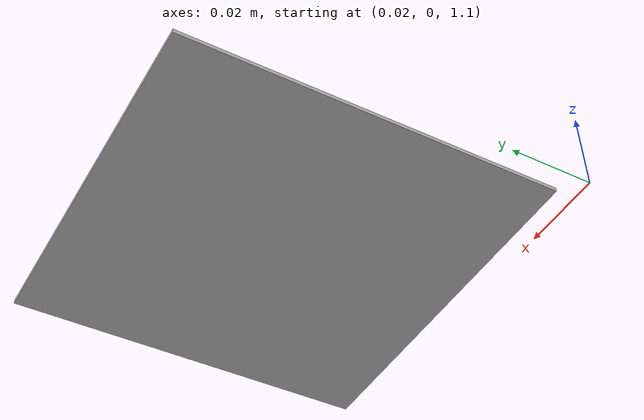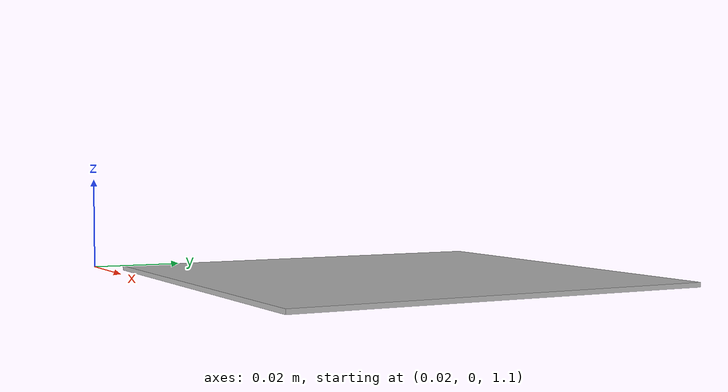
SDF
<?xml version="1.0" ?>
<sdf version="1.4">
  <model name="marker26_8cm">
    <static>1</static>
    <link name="marker">
      <pose>0.07 0.05 1.1 0 0 0</pose>
      <gravity>false</gravity>
      <visual name="visual">
        <geometry>
          <box>
            <size>0.09 0.09 0.001</size>
            <!-- SIZE OF THE MARKER + MARGIN -->
          </box>
        </geometry>
        <material>
          <script>
	        <uri>file:///root/o2ac-ur/catkin_ws/src/o2ac_gazebo/models/marker26_8cm_massless/material/scripts</uri>
	        <uri>file:///root/o2ac-ur/catkin_ws/src/o2ac_gazebo/models/marker26_8cm_massless/material/textures</uri>
            <name>Aruco/marker26_8cm</name>
          </script>
        </material>
      </visual>
      <collision name="collision">
        <geometry>
          <box>
            <size>0.09 0.09 0.02</size>
            <!-- SIZE OF THE MARKER + MARGIN -->
          </box>
        </geometry>
      </collision>
    </link>
  </model>
</sdf>
